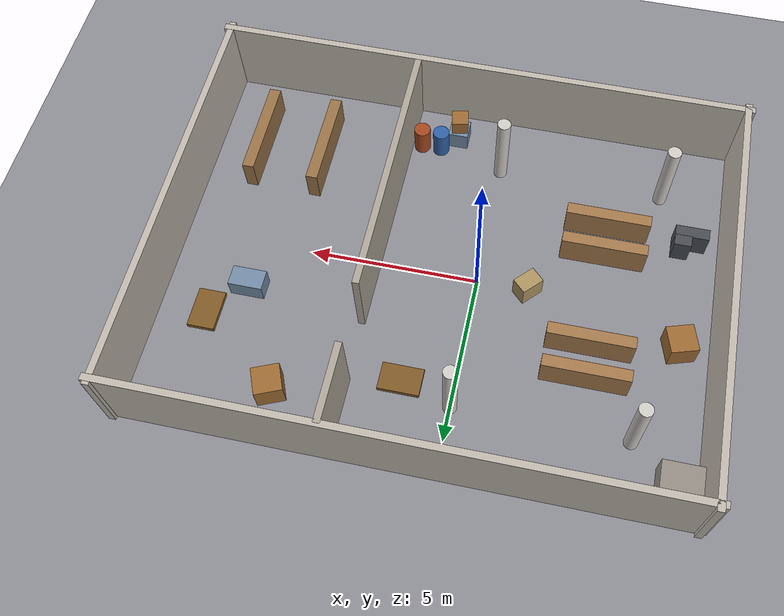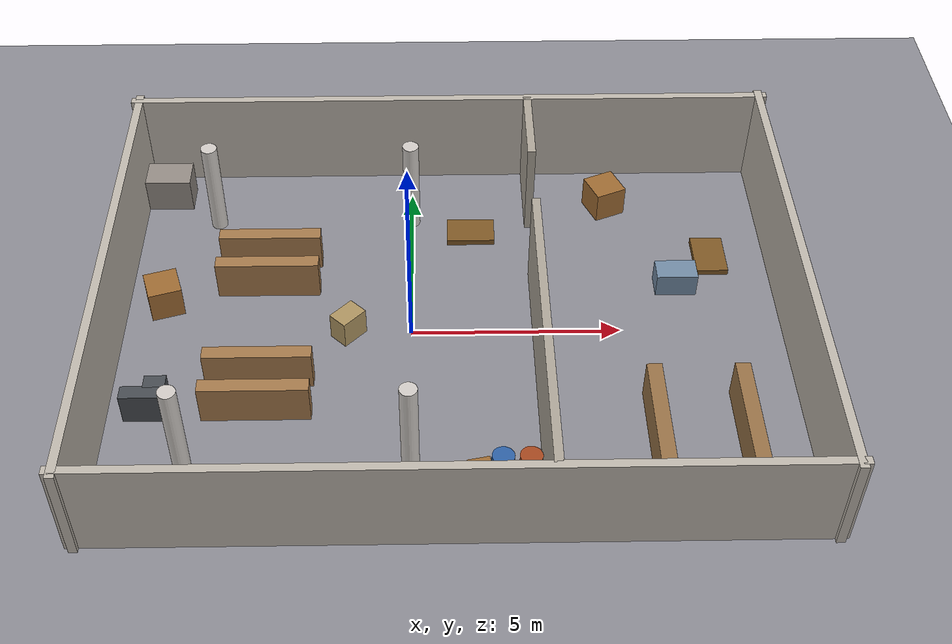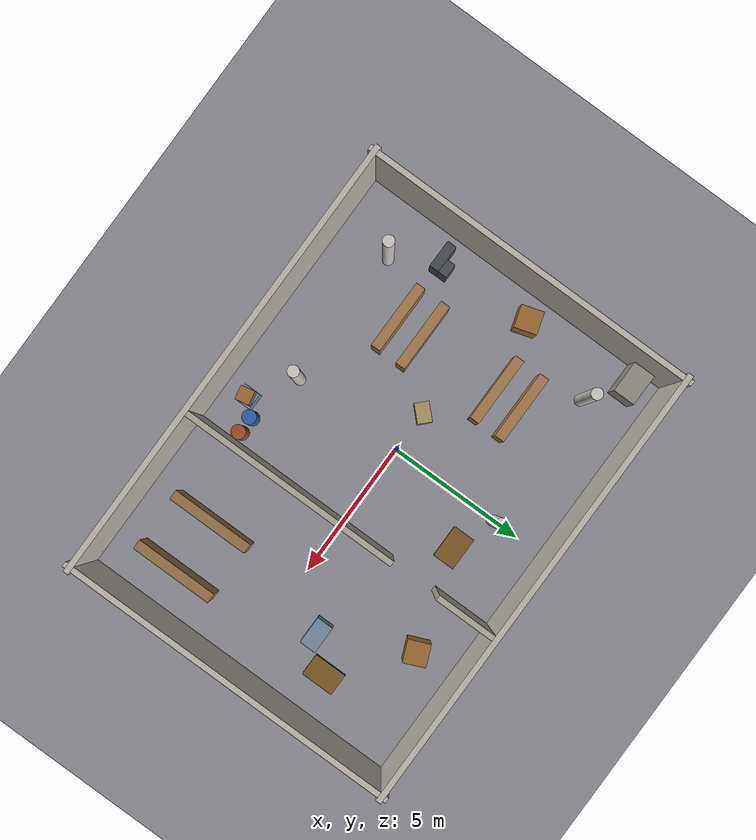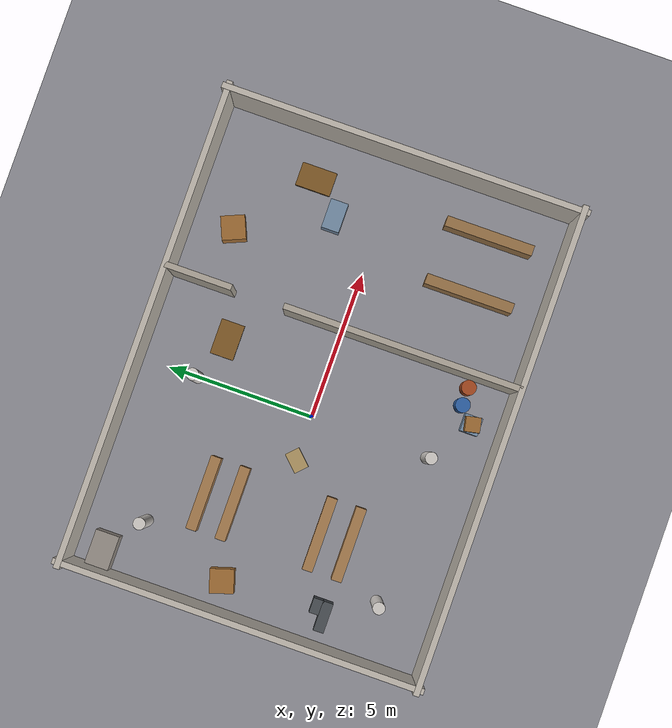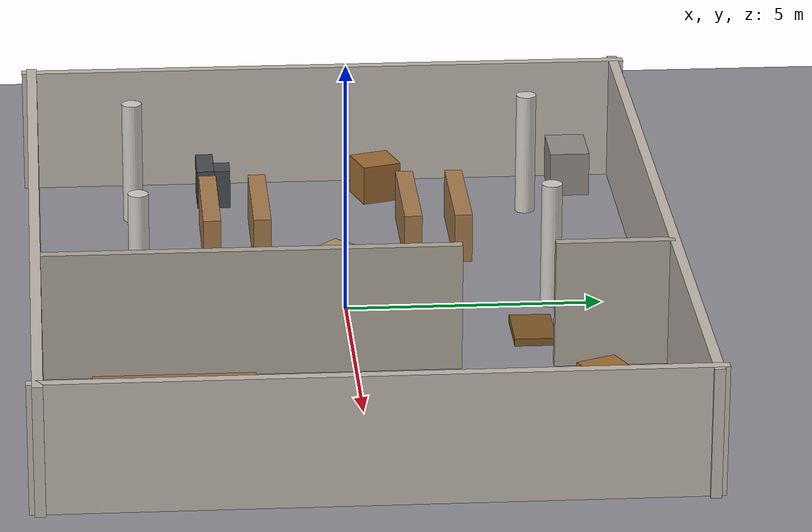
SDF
<?xml version="1.0" ?>
<sdf version="1.8">
  <world name="warehouse">

    <!-- PHYSICS                                                       -->
    <physics name="1ms" type="ignored">
      <max_step_size>0.001</max_step_size>
      <real_time_factor>1.0</real_time_factor>
    </physics>

    <!-- Required world plugins for Gazebo Harmonic -->
    <plugin filename="gz-sim-physics-system"
            name="gz::sim::systems::Physics"/>
    <plugin filename="gz-sim-user-commands-system"
            name="gz::sim::systems::UserCommands"/>
    <plugin filename="gz-sim-scene-broadcaster-system"
            name="gz::sim::systems::SceneBroadcaster"/>
    <plugin filename="gz-sim-sensors-system"
            name="gz::sim::systems::Sensors">
      <render_engine>ogre2</render_engine>
    </plugin>

    <!-- INDOOR LIGHTING (replaces outdoor sun)                        -->

    <!-- Ambient fill — dim, like a warehouse with some natural light  -->
    <light name="ambient_fill" type="directional">
      <cast_shadows>false</cast_shadows>
      <pose>0 0 8 0 0 0</pose>
      <diffuse>0.3 0.3 0.32 1</diffuse>
      <specular>0.05 0.05 0.05 1</specular>
      <attenuation>
        <range>1000</range>
        <constant>1.0</constant>
        <linear>0.0</linear>
        <quadratic>0.0</quadratic>
      </attenuation>
      <direction>0 0 -1</direction>
    </light>

    <!-- Fluorescent panel — left aisle -->
    <light name="ceiling_light_1" type="point">
      <cast_shadows>false</cast_shadows>
      <pose>-4 0 4 0 0 0</pose>
      <diffuse>0.9 0.92 0.95 1</diffuse>
      <specular>0.3 0.3 0.3 1</specular>
      <attenuation>
        <range>12</range>
        <constant>0.5</constant>
        <linear>0.1</linear>
        <quadratic>0.01</quadratic>
      </attenuation>
    </light>

    <!-- Fluorescent panel — centre -->
    <light name="ceiling_light_2" type="point">
      <cast_shadows>false</cast_shadows>
      <pose>2 0 4 0 0 0</pose>
      <diffuse>0.9 0.92 0.95 1</diffuse>
      <specular>0.3 0.3 0.3 1</specular>
      <attenuation>
        <range>12</range>
        <constant>0.5</constant>
        <linear>0.1</linear>
        <quadratic>0.01</quadratic>
      </attenuation>
    </light>

    <!-- Fluorescent panel — storage alcove -->
    <light name="ceiling_light_3" type="point">
      <cast_shadows>false</cast_shadows>
      <pose>6 4 4 0 0 0</pose>
      <diffuse>0.85 0.88 0.9 1</diffuse>
      <specular>0.2 0.2 0.2 1</specular>
      <attenuation>
        <range>10</range>
        <constant>0.5</constant>
        <linear>0.12</linear>
        <quadratic>0.01</quadratic>
      </attenuation>
    </light>

    <!-- GROUND — concrete floor texture                               -->
    <model name="ground_plane">
      <static>true</static>
      <link name="link">
        <collision name="collision">
          <geometry>
            <plane>
              <normal>0 0 1</normal>
              <size>40 40</size>
            </plane>
          </geometry>
        </collision>
        <visual name="visual">
          <geometry>
            <plane>
              <normal>0 0 1</normal>
              <size>40 40</size>
            </plane>
          </geometry>
          <material>
            <!-- Dark concrete grey -->
            <ambient>0.45 0.45 0.48 1</ambient>
            <diffuse>0.55 0.55 0.58 1</diffuse>
            <specular>0.05 0.05 0.05 1</specular>
          </material>
        </visual>
      </link>
    </model>

    <!-- PERIMETER WALLS — enclose a 16 m (X) × 12 m (Y) room        -->
    <!-- Robot spawns at (0,0). Walls centred on the room.            -->
    <!-- Room runs X: -7 to +9,  Y: -6 to +6                        -->

    <!-- South wall  (y = -6) -->
    <model name="wall_south">
      <static>true</static>
      <pose>1 -6 1.25 0 0 0</pose>
      <link name="link">
        <collision name="col">
          <geometry><box><size>16.4 0.2 2.5</size></box></geometry>
        </collision>
        <visual name="vis">
          <geometry><box><size>16.4 0.2 2.5</size></box></geometry>
          <material>
            <ambient>0.75 0.72 0.68 1</ambient>
            <diffuse>0.75 0.72 0.68 1</diffuse>
          </material>
        </visual>
      </link>
    </model>

    <!-- North wall  (y = +6) -->
    <model name="wall_north">
      <static>true</static>
      <pose>1 6 1.25 0 0 0</pose>
      <link name="link">
        <collision name="col">
          <geometry><box><size>16.4 0.2 2.5</size></box></geometry>
        </collision>
        <visual name="vis">
          <geometry><box><size>16.4 0.2 2.5</size></box></geometry>
          <material>
            <ambient>0.75 0.72 0.68 1</ambient>
            <diffuse>0.75 0.72 0.68 1</diffuse>
          </material>
        </visual>
      </link>
    </model>

    <!-- West wall  (x = -7) -->
    <model name="wall_west">
      <static>true</static>
      <pose>-7 0 1.25 0 0 0</pose>
      <link name="link">
        <collision name="col">
          <geometry><box><size>0.2 12.4 2.5</size></box></geometry>
        </collision>
        <visual name="vis">
          <geometry><box><size>0.2 12.4 2.5</size></box></geometry>
          <material>
            <ambient>0.75 0.72 0.68 1</ambient>
            <diffuse>0.75 0.72 0.68 1</diffuse>
          </material>
        </visual>
      </link>
    </model>

    <!-- East wall  (x = +9) -->
    <model name="wall_east">
      <static>true</static>
      <pose>9 0 1.25 0 0 0</pose>
      <link name="link">
        <collision name="col">
          <geometry><box><size>0.2 12.4 2.5</size></box></geometry>
        </collision>
        <visual name="vis">
          <geometry><box><size>0.2 12.4 2.5</size></box></geometry>
          <material>
            <ambient>0.75 0.72 0.68 1</ambient>
            <diffuse>0.75 0.72 0.68 1</diffuse>
          </material>
        </visual>
      </link>
    </model>

    <!-- INTERIOR DIVIDER WALL with doorway gap                       -->
    <!-- Runs along x=3, creating a main floor (x<3) and storage     -->
    <!-- alcove (x>3). Doorway gap at y = +2 to +3.75 (1.75m wide)  -->
    <!-- Wall segments: south part (y=-6 to +2) and north (y=+3.75 to +6) -->

    <!-- Divider south segment -->
    <model name="divider_south">
      <static>true</static>
      <!-- length = 2-(-6) = 8m, centred at y=-2 -->
      <pose>3 -2 1.25 0 0 0</pose>
      <link name="link">
        <collision name="col">
          <geometry><box><size>0.2 8.0 2.5</size></box></geometry>
        </collision>
        <visual name="vis">
          <geometry><box><size>0.2 8.0 2.5</size></box></geometry>
          <material>
            <ambient>0.68 0.65 0.60 1</ambient>
            <diffuse>0.68 0.65 0.60 1</diffuse>
          </material>
        </visual>
      </link>
    </model>

    <!-- Divider north segment (above the doorway) -->
    <model name="divider_north">
      <static>true</static>
      <!-- length = 6-3.75 = 2.25m, centred at y=4.875 -->
      <pose>3 4.875 1.25 0 0 0</pose>
      <link name="link">
        <collision name="col">
          <geometry><box><size>0.2 2.25 2.5</size></box></geometry>
        </collision>
        <visual name="vis">
          <geometry><box><size>0.2 2.25 2.5</size></box></geometry>
          <material>
            <ambient>0.68 0.65 0.60 1</ambient>
            <diffuse>0.68 0.65 0.60 1</diffuse>
          </material>
        </visual>
      </link>
    </model>

    <!-- SUPPORT PILLARS — main floor area                            -->

    <model name="pillar_1">
      <static>true</static>
      <pose>-5 -4 1.25 0 0 0</pose>
      <link name="link">
        <collision name="col">
          <geometry><cylinder><radius>0.2</radius><length>2.5</length></cylinder></geometry>
        </collision>
        <visual name="vis">
          <geometry><cylinder><radius>0.2</radius><length>2.5</length></cylinder></geometry>
          <material><ambient>0.82 0.80 0.78 1</ambient><diffuse>0.82 0.80 0.78 1</diffuse></material>
        </visual>
      </link>
    </model>

    <model name="pillar_2">
      <static>true</static>
      <pose>-5 4 1.25 0 0 0</pose>
      <link name="link">
        <collision name="col">
          <geometry><cylinder><radius>0.2</radius><length>2.5</length></cylinder></geometry>
        </collision>
        <visual name="vis">
          <geometry><cylinder><radius>0.2</radius><length>2.5</length></cylinder></geometry>
          <material><ambient>0.82 0.80 0.78 1</ambient><diffuse>0.82 0.80 0.78 1</diffuse></material>
        </visual>
      </link>
    </model>

    <model name="pillar_3">
      <static>true</static>
      <pose>0 -4 1.25 0 0 0</pose>
      <link name="link">
        <collision name="col">
          <geometry><cylinder><radius>0.2</radius><length>2.5</length></cylinder></geometry>
        </collision>
        <visual name="vis">
          <geometry><cylinder><radius>0.2</radius><length>2.5</length></cylinder></geometry>
          <material><ambient>0.82 0.80 0.78 1</ambient><diffuse>0.82 0.80 0.78 1</diffuse></material>
        </visual>
      </link>
    </model>

    <model name="pillar_4">
      <static>true</static>
      <pose>0 4 1.25 0 0 0</pose>
      <link name="link">
        <collision name="col">
          <geometry><cylinder><radius>0.2</radius><length>2.5</length></cylinder></geometry>
        </collision>
        <visual name="vis">
          <geometry><cylinder><radius>0.2</radius><length>2.5</length></cylinder></geometry>
          <material><ambient>0.82 0.80 0.78 1</ambient><diffuse>0.82 0.80 0.78 1</diffuse></material>
        </visual>
      </link>
    </model>

    <!-- SHELF RACKS — main floor (west side)                         -->
    <!-- Two parallel rows running east-west                          -->

    <!-- Shelf Row A — y = -2.5, two shelf units end-to-end -->
    <model name="shelf_a1">
      <static>true</static>
      <pose>-3.5 -2.5 0.5 0 0 0</pose>
      <link name="link">
        <collision name="col">
          <geometry><box><size>2.5 0.35 1.0</size></box></geometry>
        </collision>
        <visual name="vis">
          <geometry><box><size>2.5 0.35 1.0</size></box></geometry>
          <material>
            <ambient>0.60 0.45 0.28 1</ambient>
            <diffuse>0.65 0.48 0.30 1</diffuse>
          </material>
        </visual>
      </link>
    </model>

    <model name="shelf_a2">
      <static>true</static>
      <pose>-3.5 -1.5 0.5 0 0 0</pose>
      <link name="link">
        <collision name="col">
          <geometry><box><size>2.5 0.35 1.0</size></box></geometry>
        </collision>
        <visual name="vis">
          <geometry><box><size>2.5 0.35 1.0</size></box></geometry>
          <material>
            <ambient>0.60 0.45 0.28 1</ambient>
            <diffuse>0.65 0.48 0.30 1</diffuse>
          </material>
        </visual>
      </link>
    </model>

    <!-- Shelf Row B — y = +1.5, two shelf units -->
    <model name="shelf_b1">
      <static>true</static>
      <pose>-3.5 1.5 0.5 0 0 0</pose>
      <link name="link">
        <collision name="col">
          <geometry><box><size>2.5 0.35 1.0</size></box></geometry>
        </collision>
        <visual name="vis">
          <geometry><box><size>2.5 0.35 1.0</size></box></geometry>
          <material>
            <ambient>0.60 0.45 0.28 1</ambient>
            <diffuse>0.65 0.48 0.30 1</diffuse>
          </material>
        </visual>
      </link>
    </model>

    <model name="shelf_b2">
      <static>true</static>
      <pose>-3.5 2.5 0.5 0 0 0</pose>
      <link name="link">
        <collision name="col">
          <geometry><box><size>2.5 0.35 1.0</size></box></geometry>
        </collision>
        <visual name="vis">
          <geometry><box><size>2.5 0.35 1.0</size></box></geometry>
          <material>
            <ambient>0.60 0.45 0.28 1</ambient>
            <diffuse>0.65 0.48 0.30 1</diffuse>
          </material>
        </visual>
      </link>
    </model>

    <!-- SHELF RACKS — storage alcove (east side, x > 3)             -->

    <model name="shelf_c1">
      <static>true</static>
      <pose>5.5 -3.5 0.5 0 0 1.5708</pose>
      <link name="link">
        <collision name="col">
          <geometry><box><size>3.0 0.35 1.0</size></box></geometry>
        </collision>
        <visual name="vis">
          <geometry><box><size>3.0 0.35 1.0</size></box></geometry>
          <material>
            <ambient>0.55 0.42 0.25 1</ambient>
            <diffuse>0.60 0.45 0.28 1</diffuse>
          </material>
        </visual>
      </link>
    </model>

    <model name="shelf_c2">
      <static>true</static>
      <pose>7.5 -3.5 0.5 0 0 1.5708</pose>
      <link name="link">
        <collision name="col">
          <geometry><box><size>3.0 0.35 1.0</size></box></geometry>
        </collision>
        <visual name="vis">
          <geometry><box><size>3.0 0.35 1.0</size></box></geometry>
          <material>
            <ambient>0.55 0.42 0.25 1</ambient>
            <diffuse>0.60 0.45 0.28 1</diffuse>
          </material>
        </visual>
      </link>
    </model>

    <!-- CARGO BOXES — scattered across the floor                     -->

    <!-- Large crate near west wall -->
    <model name="cargo_box_1">
      <static>true</static>
      <pose>-6.0 1.0 0.4 0 0 0.3</pose>
      <link name="link">
        <collision name="col">
          <geometry><box><size>0.8 0.8 0.8</size></box></geometry>
        </collision>
        <visual name="vis">
          <geometry><box><size>0.8 0.8 0.8</size></box></geometry>
          <material><ambient>0.58 0.38 0.18 1</ambient><diffuse>0.62 0.42 0.20 1</diffuse></material>
        </visual>
      </link>
    </model>

    <!-- Stack of two small boxes -->
    <model name="cargo_box_2">
      <static>true</static>
      <pose>1.5 -5.0 0.3 0 0 0</pose>
      <link name="link">
        <collision name="col">
          <geometry><box><size>0.6 0.6 0.6</size></box></geometry>
        </collision>
        <visual name="vis">
          <geometry><box><size>0.6 0.6 0.6</size></box></geometry>
          <material><ambient>0.42 0.52 0.62 1</ambient><diffuse>0.45 0.55 0.65 1</diffuse></material>
        </visual>
      </link>
    </model>

    <model name="cargo_box_3">
      <static>true</static>
      <pose>1.5 -5.0 0.9 0 0 0.2</pose>
      <link name="link">
        <collision name="col">
          <geometry><box><size>0.5 0.5 0.5</size></box></geometry>
        </collision>
        <visual name="vis">
          <geometry><box><size>0.5 0.5 0.5</size></box></geometry>
          <material><ambient>0.58 0.38 0.18 1</ambient><diffuse>0.62 0.42 0.20 1</diffuse></material>
        </visual>
      </link>
    </model>

    <!-- Box in middle of main floor aisle -->
    <model name="cargo_box_4">
      <static>true</static>
      <pose>-1.5 0.0 0.35 0 0 0.8</pose>
      <link name="link">
        <collision name="col">
          <geometry><box><size>0.7 0.5 0.7</size></box></geometry>
        </collision>
        <visual name="vis">
          <geometry><box><size>0.7 0.5 0.7</size></box></geometry>
          <material><ambient>0.65 0.55 0.35 1</ambient><diffuse>0.68 0.58 0.38 1</diffuse></material>
        </visual>
      </link>
    </model>

    <!-- Boxes in storage alcove -->
    <model name="cargo_box_5">
      <static>true</static>
      <pose>6.5 1.5 0.3 0 0 0</pose>
      <link name="link">
        <collision name="col">
          <geometry><box><size>1.0 0.6 0.6</size></box></geometry>
        </collision>
        <visual name="vis">
          <geometry><box><size>1.0 0.6 0.6</size></box></geometry>
          <material><ambient>0.42 0.52 0.62 1</ambient><diffuse>0.45 0.55 0.65 1</diffuse></material>
        </visual>
      </link>
    </model>

    <model name="cargo_box_6">
      <static>true</static>
      <pose>5.0 4.5 0.4 0 0 0.4</pose>
      <link name="link">
        <collision name="col">
          <geometry><box><size>0.8 0.8 0.8</size></box></geometry>
        </collision>
        <visual name="vis">
          <geometry><box><size>0.8 0.8 0.8</size></box></geometry>
          <material><ambient>0.58 0.38 0.18 1</ambient><diffuse>0.62 0.42 0.20 1</diffuse></material>
        </visual>
      </link>
    </model>

    <!-- PALLETS — flat low obstacles                                  -->

    <model name="pallet_1">
      <static>true</static>
      <pose>1.5 3.5 0.075 0 0 0</pose>
      <link name="link">
        <collision name="col">
          <geometry><box><size>1.2 0.8 0.15</size></box></geometry>
        </collision>
        <visual name="vis">
          <geometry><box><size>1.2 0.8 0.15</size></box></geometry>
          <material><ambient>0.55 0.38 0.18 1</ambient><diffuse>0.50 0.35 0.15 1</diffuse></material>
        </visual>
      </link>
    </model>

    <model name="pallet_2">
      <static>true</static>
      <pose>7.5 2.5 0.075 0 0 1.5708</pose>
      <link name="link">
        <collision name="col">
          <geometry><box><size>1.2 0.8 0.15</size></box></geometry>
        </collision>
        <visual name="vis">
          <geometry><box><size>1.2 0.8 0.15</size></box></geometry>
          <material><ambient>0.55 0.38 0.18 1</ambient><diffuse>0.50 0.35 0.15 1</diffuse></material>
        </visual>
      </link>
    </model>

    <!-- LOADING TROLLEY — narrow L-shaped obstacle                   -->
    <!-- Simulated as two thin box members                            -->

    <model name="trolley_body">
      <static>true</static>
      <pose>-6.0 -2.5 0.4 0 0 0</pose>
      <link name="link">
        <collision name="col">
          <geometry><box><size>1.0 0.35 0.8</size></box></geometry>
        </collision>
        <visual name="vis">
          <geometry><box><size>1.0 0.35 0.8</size></box></geometry>
          <material><ambient>0.25 0.28 0.30 1</ambient><diffuse>0.28 0.30 0.32 1</diffuse></material>
        </visual>
      </link>
    </model>

    <model name="trolley_arm">
      <static>true</static>
      <pose>-5.75 -2.18 0.4 0 0 0</pose>
      <link name="link">
        <collision name="col">
          <geometry><box><size>0.5 0.35 0.8</size></box></geometry>
        </collision>
        <visual name="vis">
          <geometry><box><size>0.5 0.35 0.8</size></box></geometry>
          <material><ambient>0.25 0.28 0.30 1</ambient><diffuse>0.28 0.30 0.32 1</diffuse></material>
        </visual>
      </link>
    </model>

    <!-- BARREL — cylindrical obstacle near south-east corner          -->

    <model name="barrel_1">
      <static>true</static>
      <pose>2.0 -4.5 0.45 0 0 0</pose>
      <link name="link">
        <collision name="col">
          <geometry><cylinder><radius>0.25</radius><length>0.9</length></cylinder></geometry>
        </collision>
        <visual name="vis">
          <geometry><cylinder><radius>0.25</radius><length>0.9</length></cylinder></geometry>
          <material><ambient>0.15 0.35 0.60 1</ambient><diffuse>0.18 0.38 0.65 1</diffuse></material>
        </visual>
      </link>
    </model>

    <model name="barrel_2">
      <static>true</static>
      <pose>2.6 -4.5 0.45 0 0 0</pose>
      <link name="link">
        <collision name="col">
          <geometry><cylinder><radius>0.25</radius><length>0.9</length></cylinder></geometry>
        </collision>
        <visual name="vis">
          <geometry><cylinder><radius>0.25</radius><length>0.9</length></cylinder></geometry>
          <material><ambient>0.60 0.25 0.10 1</ambient><diffuse>0.65 0.28 0.12 1</diffuse></material>
        </visual>
      </link>
    </model>

    <!-- WORK STATION TABLE — flat wide obstacle                      -->

    <model name="workstation">
      <static>true</static>
      <pose>-6.5 5.0 0.45 0 0 0</pose>
      <link name="link">
        <collision name="col">
          <geometry><box><size>1.5 0.8 0.9</size></box></geometry>
        </collision>
        <visual name="vis">
          <geometry><box><size>1.5 0.8 0.9</size></box></geometry>
          <material><ambient>0.55 0.52 0.50 1</ambient><diffuse>0.58 0.55 0.52 1</diffuse></material>
        </visual>
      </link>
    </model>

  </world>
</sdf>
